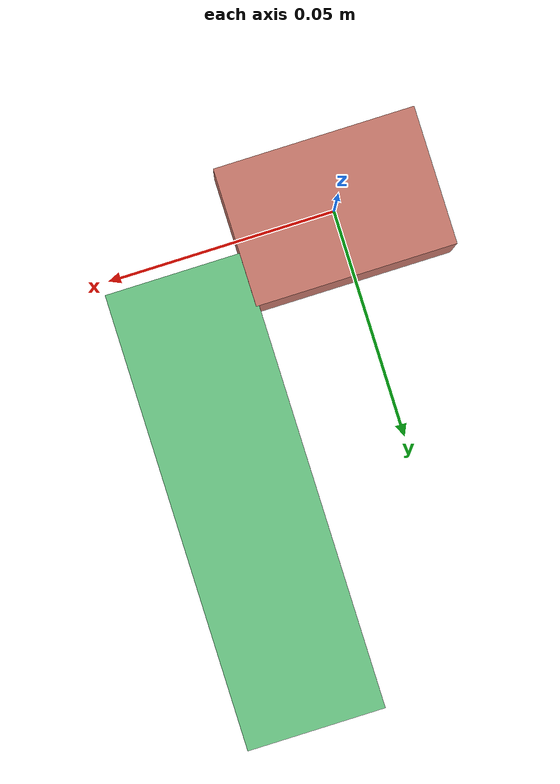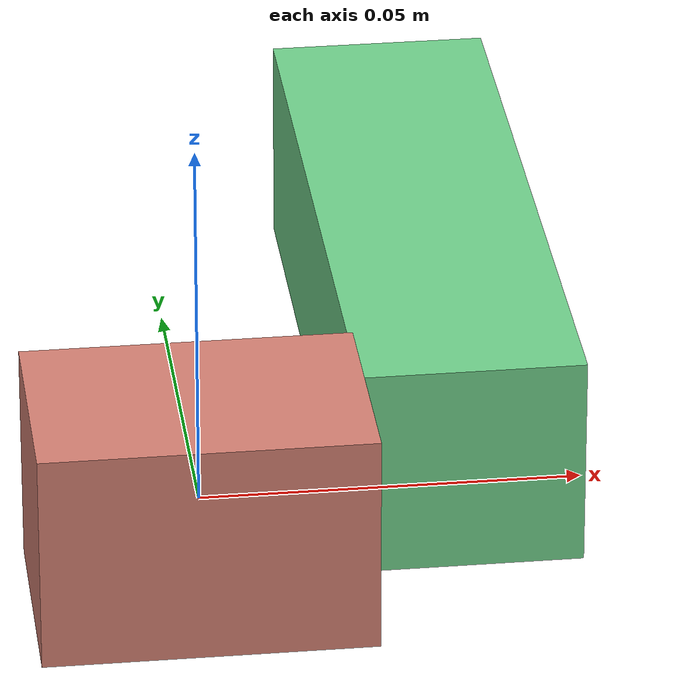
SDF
<sdf version="1.4"><world name="default"><model name="object0"><link name="link1"><pose>0 0 0 0 0 0</pose><inertial><pose>0 0 0 0 0 0</pose><mass>0.02367865472512137</mass><inertia><ixx>3.551798208768205e-06</ixx><ixy>0</ixy><iyy>5.569942629352932e-06</iyy><ixz>0</ixz><iyz>0</iyz><izz>5.569942629352932e-06</izz></inertia></inertial><visual name="link1_visual"><pose>0 0  0 0 0 0</pose><geometry><box><size>0.043849360602076615 0.03 0.03</size></box></geometry><material><diffuse>0.8311717779596679 0.5030190950649822 0.44957580698260746 1</diffuse></material></visual><collision><pose>0 0  0 0 0 0</pose><geometry><box><size>0.043849360602076615 0.03 0.03</size></box></geometry></collision></link><link name="link2"><pose>0.03627464173465844 0.05299559061378897 0 0 0 0</pose><inertial><pose>0 0 0 0 0 0</pose><mass>0.0535987904443743</mass><inertia><ixx>4.776079182509196e-05</ixx><ixy>0</ixy><iyy>7.776291180304638e-06</iyy><ixz>0</ixz><iyz>0</iyz><izz>4.802431921144347e-05</izz></inertia></inertial><visual name="link2_visual"><pose>0 0  0 0 0 0</pose><geometry><box><size>0.03 0.0992570193414339 0.028999999999999998</size></box></geometry><material><diffuse>0.43816920598804254 0.8182939133729654 0.5452194502529459 1</diffuse></material></visual><collision><pose>0 0  0 0 0 0</pose><geometry><box><size>0.03 0.0992570193414339 0.028999999999999998</size></box></geometry></collision></link><joint name="link_joint_0" type="fixed"><parent>link1</parent><child>link2</child><pose>0 0 0 0 0 0</pose><axis><xyz>0 0 1</xyz></axis></joint></model></world></sdf>
